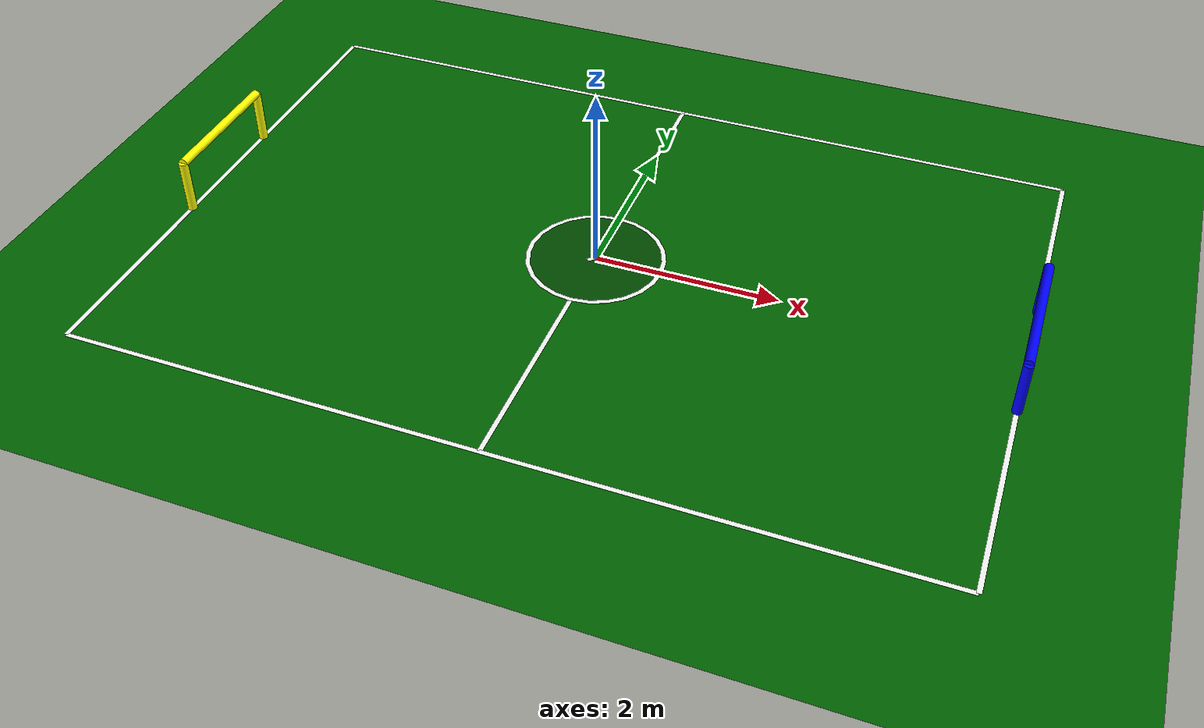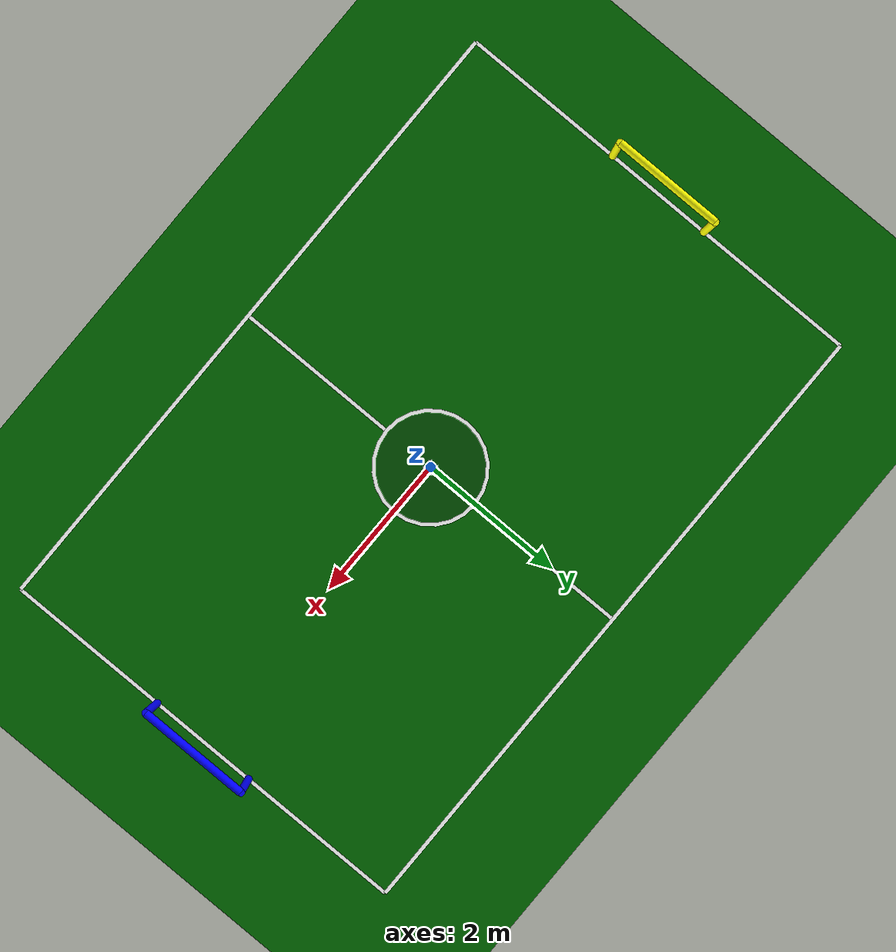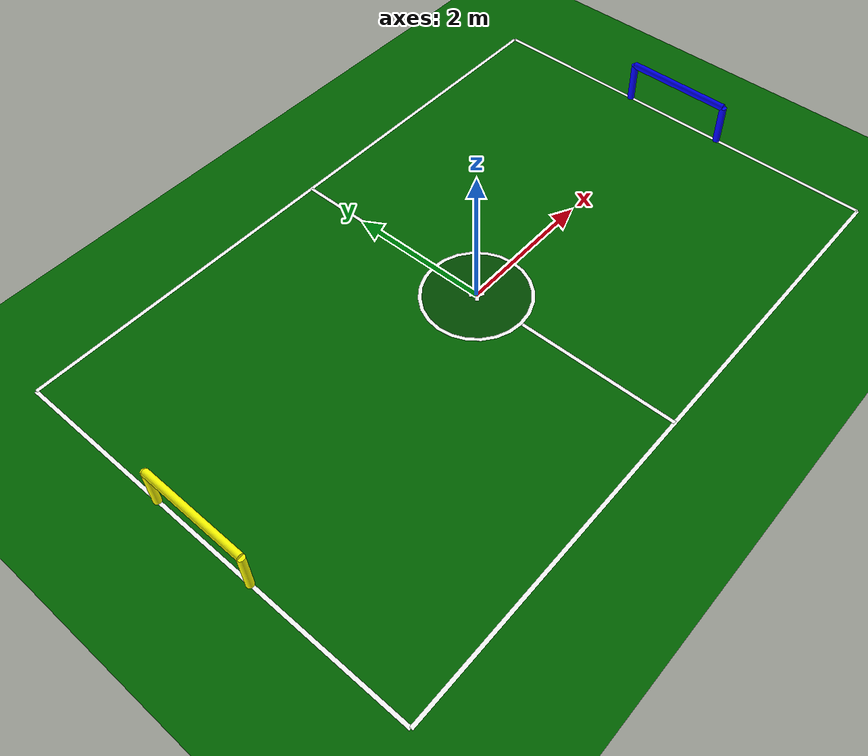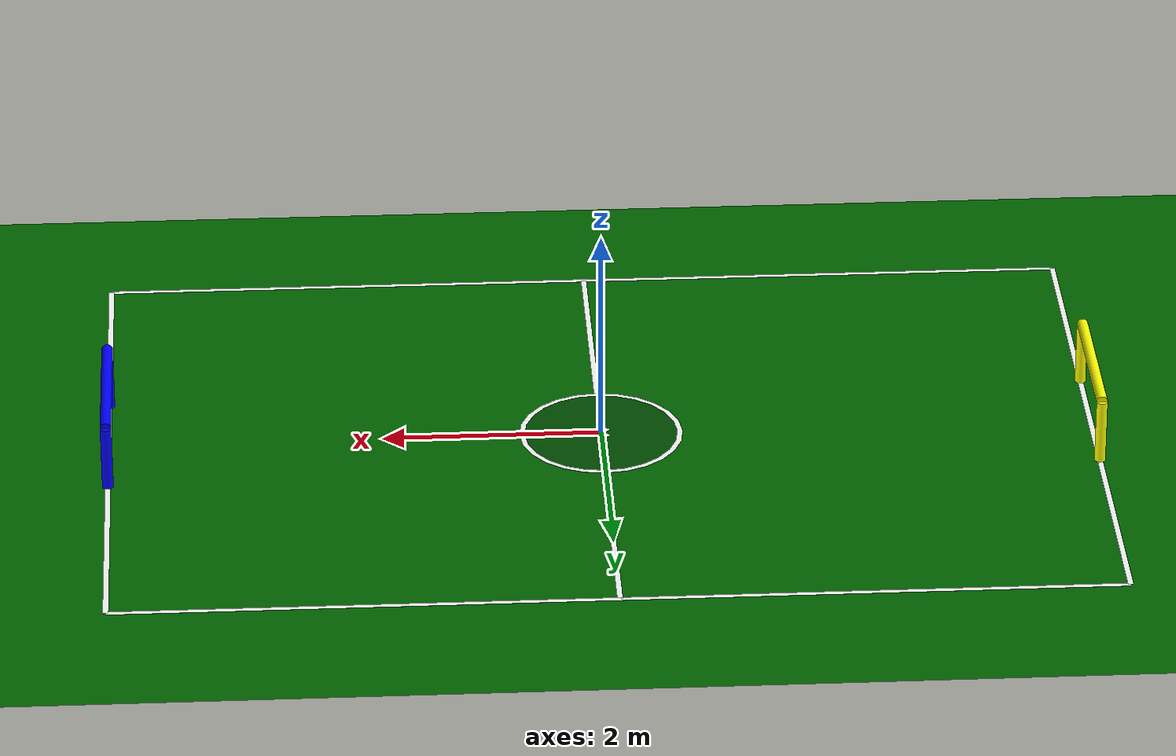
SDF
<?xml version="1.0" ?>
<sdf version="1.6">
  <world name="robocup_field">
    <include><uri>model://sun</uri></include>

    <plugin name="gazebo_ros_state" filename="libgazebo_ros_state.so">
      <ros>
        <namespace>/gazebo</namespace>
        <argument>model_states:=model_states</argument>
      </ros>
      <update_rate>50.0</update_rate>
    </plugin>

    <model name="dark_green_floor">
      <static>true</static>
      <link name="link">
        <collision name="collision">
          <geometry><plane><normal>0 0 1</normal><size>12 9</size></plane></geometry>
          <surface>
            <friction>
              <ode>
                <mu>0.3</mu>
                <mu2>0.3</mu2>
              </ode>
            </friction>
          </surface>
        </collision>
        <visual name="visual">
          <geometry><plane><normal>0 0 1</normal><size>12 9</size></plane></geometry>
          <material>
            <ambient>0.0 0.3 0.0 1</ambient> <diffuse>0.0 0.4 0.0 1</diffuse>
            <specular>0.1 0.1 0.1 1</specular>
          </material>
        </visual>
      </link>
    </model>

    <model name="center_circle_white">
      <static>true</static><pose>0 0 0.002 0 0 0</pose>
      <link name="link"><visual name="visual"><geometry><cylinder><radius>0.75</radius><length>0.002</length></cylinder></geometry><material><ambient>1 1 1 1</ambient></material></visual></link>
    </model>
    <model name="center_circle_mask">
      <static>true</static><pose>0 0 0.003 0 0 0</pose>
      <link name="link"><visual name="visual"><geometry><cylinder><radius>0.70</radius><length>0.002</length></cylinder></geometry><material><ambient>0.0 0.3 0.0 1</ambient></material></visual></link>
    </model>
    <model name="center_x_1">
      <static>true</static> <pose>0 0 0.004 0 0 0.785</pose>
      <link name="l"><visual name="v"><geometry><box><size>0.2 0.05 0.001</size></box></geometry><material><ambient>1 1 1 1</ambient></material></visual></link>
    </model>
    <model name="center_x_2">
      <static>true</static> <pose>0 0 0.004 0 0 -0.785</pose>
      <link name="l"><visual name="v"><geometry><box><size>0.2 0.05 0.001</size></box></geometry><material><ambient>1 1 1 1</ambient></material></visual></link>
    </model>
    <model name="line_top">
      <static>true</static><pose>0 3.0 0.001 0 0 0</pose>
      <link name="l"><visual name="v"><geometry><box><size>9.0 0.05 0.001</size></box></geometry><material><ambient>1 1 1 1</ambient></material></visual></link>
    </model>
    <model name="line_bottom">
      <static>true</static><pose>0 -3.0 0.001 0 0 0</pose>
      <link name="l"><visual name="v"><geometry><box><size>9.0 0.05 0.001</size></box></geometry><material><ambient>1 1 1 1</ambient></material></visual></link>
    </model>
    <model name="line_left">
      <static>true</static><pose>-4.5 0 0.001 0 0 0</pose>
      <link name="l"><visual name="v"><geometry><box><size>0.05 6.0 0.001</size></box></geometry><material><ambient>1 1 1 1</ambient></material></visual></link>
    </model>
    <model name="line_right">
      <static>true</static><pose>4.5 0 0.001 0 0 0</pose>
      <link name="l"><visual name="v"><geometry><box><size>0.05 6.0 0.001</size></box></geometry><material><ambient>1 1 1 1</ambient></material></visual></link>
    </model>
    <model name="line_center">
      <static>true</static><pose>0 0 0.001 0 0 0</pose>
      <link name="l"><visual name="v"><geometry><box><size>0.05 6.0 0.001</size></box></geometry><material><ambient>1 1 1 1</ambient></material></visual></link>
    </model>

    <model name="goal_left">
      <static>true</static><pose>-4.5 0 0 0 0 0</pose>
      <link name="posts">
        <visual name="lp"><pose>0 0.75 0.3 0 0 0</pose><geometry><cylinder><radius>0.05</radius><length>0.6</length></cylinder></geometry><material><ambient>1 1 0 1</ambient></material></visual>
        <visual name="rp"><pose>0 -0.75 0.3 0 0 0</pose><geometry><cylinder><radius>0.05</radius><length>0.6</length></cylinder></geometry><material><ambient>1 1 0 1</ambient></material></visual>
        <visual name="cb"><pose>0 0 0.6 1.5707 0 0</pose><geometry><cylinder><radius>0.05</radius><length>1.5</length></cylinder></geometry><material><ambient>1 1 0 1</ambient></material></visual>
      </link>
    </model>
    <model name="goal_right">
      <static>true</static><pose>4.5 0 0 0 0 0</pose>
      <link name="posts">
        <visual name="lp"><pose>0 0.75 0.3 0 0 0</pose><geometry><cylinder><radius>0.05</radius><length>0.6</length></cylinder></geometry><material><ambient>0 0 1 1</ambient></material></visual>
        <visual name="rp"><pose>0 -0.75 0.3 0 0 0</pose><geometry><cylinder><radius>0.05</radius><length>0.6</length></cylinder></geometry><material><ambient>0 0 1 1</ambient></material></visual>
        <visual name="cb"><pose>0 0 0.6 1.5707 0 0</pose><geometry><cylinder><radius>0.05</radius><length>1.5</length></cylinder></geometry><material><ambient>0 0 1 1</ambient></material></visual>
      </link>
    </model>

  </world>
</sdf>
